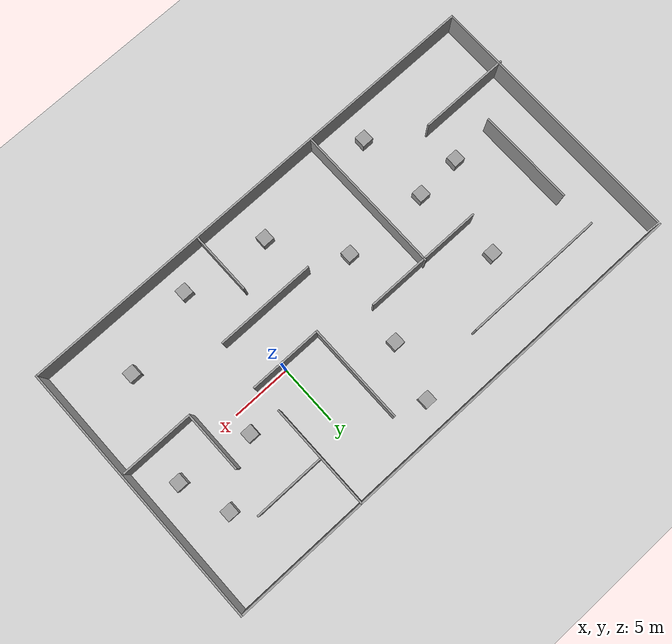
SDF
<sdf version="1.7">
 <world name="default">
  <light name="sun" type="directional">
   <pose>0 0 10 0 -0 0</pose>
   <diffuse>0.8 0.8 0.8 1</diffuse>
   <specular>0.2 0.2 0.2 1</specular>
   <attenuation>
    <range>1000</range>
    <constant>0.9</constant>
    <linear>0.01</linear>
    <quadratic>0.001</quadratic>
   </attenuation>
   <direction>-0.5 0.1 -0.9</direction>
   <spot><inner_angle>0</inner_angle><outer_angle>0</outer_angle><falloff>0</falloff></spot>
  </light>
  <model name="ground_plane">
   <static>1</static>
   <link name="link">
    <collision name="collision">
     <geometry><plane><normal>0 0 1</normal><size>100 100</size></plane></geometry>
     <surface><friction><ode><mu>100</mu><mu2>50</mu2></ode></friction></surface>
    </collision>
    <visual name="visual">
     <cast_shadows>0</cast_shadows>
     <geometry><plane><normal>0 0 1</normal><size>100 100</size></plane></geometry>
     <material>
      <script><uri>file://media/materials/scripts/gazebo.material</uri><name>Gazebo/Grey</name></script>
     </material>
    </visual>
   </link>
  </model>
  <gravity>0 0 -9.8</gravity>
  <magnetic_field>6e-06 2.3e-05 -4.2e-05</magnetic_field>
  <atmosphere type="adiabatic"/>
  <physics type="ode">
   <max_step_size>0.001</max_step_size>
   <real_time_factor>1</real_time_factor>
   <real_time_update_rate>1000</real_time_update_rate>
  </physics>
  <scene><ambient>0.4 0.4 0.4 1</ambient><background>0.7 0.7 0.7 1</background><shadows>1</shadows></scene>
  <audio><device>default</device></audio>
  <spherical_coordinates>
   <surface_model>EARTH_WGS84</surface_model>
   <latitude_deg>0</latitude_deg>
   <longitude_deg>0</longitude_deg>
   <elevation>0</elevation>
   <heading_deg>0</heading_deg>
  </spherical_coordinates>
  <model name="maze1">
   <pose>-7.20829 -0.34997 0 0 -0 0</pose>
   <link name="Wall_1">
    <collision name="Wall_1_Collision">
     <geometry><box><size>22.5 0.15 2.5</size></box></geometry>
     <pose>0 0 1.25 0 -0 0</pose>
    </collision>
    <visual name="Wall_1_Visual">
     <pose>0 0 1.25 0 -0 0</pose>
     <geometry><box><size>22.5 0.15 2.5</size></box></geometry>
     <material>
      <script><uri>file://media/materials/scripts/gazebo.material</uri><name>Gazebo/Grey</name></script>
      <ambient>1 1 1 1</ambient>
     </material>
     <meta><layer>0</layer></meta>
    </visual>
    <pose>-20.7077 -0.125 0 0 -0 -1.5708</pose>
   </link>
   <link name="Wall_11">
    <collision name="Wall_11_Collision">
     <geometry><box><size>7.75 0.15 2.5</size></box></geometry>
     <pose>0 0 1.25 0 -0 0</pose>
    </collision>
    <visual name="Wall_11_Visual">
     <pose>0 0 1.25 0 -0 0</pose>
     <geometry><box><size>7.75 0.15 2.5</size></box></geometry>
     <material>
      <script><uri>file://media/materials/scripts/gazebo.material</uri><name>Gazebo/Grey</name></script>
      <ambient>1 1 1 1</ambient>
     </material>
     <meta><layer>0</layer></meta>
    </visual>
    <pose>-17.0923 -6.05475 0 0 -0 0</pose>
   </link>
   <link name="Wall_13">
    <collision name="Wall_13_Collision">
     <geometry><box><size>10.25 0.15 2.5</size></box></geometry>
     <pose>0 0 1.25 0 -0 0</pose>
    </collision>
    <visual name="Wall_13_Visual">
     <pose>0 0 1.25 0 -0 0</pose>
     <geometry><box><size>10.25 0.15 2.5</size></box></geometry>
     <material>
      <script><uri>file://media/materials/scripts/gazebo.material</uri><name>Gazebo/Grey</name></script>
      <ambient>1 1 1 1</ambient>
     </material>
     <meta><layer>0</layer></meta>
    </visual>
    <pose>-5.81325 1.3286 0 0 -0 0</pose>
   </link>
   <link name="Wall_15">
    <collision name="Wall_15_Collision">
     <geometry><box><size>12.75 0.15 2.5</size></box></geometry>
     <pose>0 0 1.25 0 -0 0</pose>
    </collision>
    <visual name="Wall_15_Visual">
     <pose>0 0 1.25 0 -0 0</pose>
     <geometry><box><size>12.75 0.15 2.5</size></box></geometry>
     <material>
      <script><uri>file://media/materials/scripts/gazebo.material</uri><name>Gazebo/Grey</name></script>
      <ambient>1 1 1 1</ambient>
     </material>
     <meta><layer>0</layer></meta>
    </visual>
    <pose>-5.87949 -4.84835 0 0 -0 -1.5708</pose>
   </link>
   <link name="Wall_17">
    <collision name="Wall_17_Collision">
     <geometry><box><size>8.5 0.15 2.5</size></box></geometry>
     <pose>0 0 1.25 0 -0 0</pose>
    </collision>
    <visual name="Wall_17_Visual">
     <pose>0 0 1.25 0 -0 0</pose>
     <geometry><box><size>8.5 0.15 2.5</size></box></geometry>
     <material>
      <script><uri>file://media/materials/scripts/gazebo.material</uri><name>Gazebo/Grey</name></script>
      <ambient>1 1 1 1</ambient>
     </material>
     <meta><layer>0</layer></meta>
    </visual>
    <pose>3.65733 4.16777 0 0 -0 -1.5708</pose>
   </link>
   <link name="Wall_18">
    <collision name="Wall_18_Collision">
     <geometry><box><size>6.25 0.15 2.5</size></box></geometry>
     <pose>0 0 1.25 0 -0 0</pose>
    </collision>
    <visual name="Wall_18_Visual">
     <pose>0 0 1.25 0 -0 0</pose>
     <geometry><box><size>6.25 0.15 2.5</size></box></geometry>
     <material>
      <script><uri>file://media/materials/scripts/gazebo.material</uri><name>Gazebo/Grey</name></script>
      <ambient>1 1 1 1</ambient>
     </material>
     <meta><layer>0</layer></meta>
    </visual>
    <pose>6.70733 -0.007226 0 0 -0 0</pose>
   </link>
   <link name="Wall_2">
    <collision name="Wall_2_Collision">
     <geometry><box><size>41.75 0.15 2.5</size></box></geometry>
     <pose>0 0 1.25 0 -0 0</pose>
    </collision>
    <visual name="Wall_2_Visual">
     <pose>0 0 1.25 0 -0 0</pose>
     <geometry><box><size>41.75 0.15 2.5</size></box></geometry>
     <material>
      <script><uri>file://media/materials/scripts/gazebo.material</uri><name>Gazebo/Grey</name></script>
      <ambient>1 1 1 1</ambient>
     </material>
     <meta><layer>0</layer></meta>
    </visual>
    <pose>0.092291 -11.3 0 0 -0 0</pose>
   </link>
   <link name="Wall_20">
    <collision name="Wall_20_Collision">
     <geometry><box><size>8.5 0.15 2.5</size></box></geometry>
     <pose>0 0 1.25 0 -0 0</pose>
    </collision>
    <visual name="Wall_20_Visual">
     <pose>0 0 1.25 0 -0 0</pose>
     <geometry><box><size>8.5 0.15 2.5</size></box></geometry>
     <material>
      <script><uri>file://media/materials/scripts/gazebo.material</uri><name>Gazebo/Grey</name></script>
      <ambient>1 1 1 1</ambient>
     </material>
     <meta><layer>0</layer></meta>
    </visual>
    <pose>5.1251 -4.02433 0 0 -0 0</pose>
   </link>
   <link name="Wall_22">
    <collision name="Wall_22_Collision">
     <geometry><box><size>5.25 0.15 2.5</size></box></geometry>
     <pose>0 0 1.25 0 -0 0</pose>
    </collision>
    <visual name="Wall_22_Visual">
     <pose>0 0 1.25 0 -0 0</pose>
     <geometry><box><size>5.25 0.15 2.5</size></box></geometry>
     <material>
      <script><uri>file://media/materials/scripts/gazebo.material</uri><name>Gazebo/Grey</name></script>
      <ambient>1 1 1 1</ambient>
     </material>
     <meta><layer>0</layer></meta>
    </visual>
    <pose>5.50317 -8.60475 0 0 -0 -1.5708</pose>
   </link>
   <link name="Wall_24">
    <collision name="Wall_24_Collision">
     <geometry><box><size>9 0.15 2.5</size></box></geometry>
     <pose>0 0 1.25 0 -0 0</pose>
    </collision>
    <visual name="Wall_24_Visual">
     <pose>0 0 1.25 0 -0 0</pose>
     <geometry><box><size>9 0.15 2.5</size></box></geometry>
     <material>
      <script><uri>file://media/materials/scripts/gazebo.material</uri><name>Gazebo/Grey</name></script>
      <ambient>1 1 1 1</ambient>
     </material>
     <meta><layer>0</layer></meta>
    </visual>
    <pose>9.56401 6.87111 0 0 -0 -1.5708</pose>
   </link>
   <link name="Wall_26">
    <collision name="Wall_26_Collision">
     <geometry><box><size>6 0.15 2.5</size></box></geometry>
     <pose>0 0 1.25 0 -0 0</pose>
    </collision>
    <visual name="Wall_26_Visual">
     <pose>0 0 1.25 0 -0 0</pose>
     <geometry><box><size>6 0.15 2.5</size></box></geometry>
     <material>
      <script><uri>file://media/materials/scripts/gazebo.material</uri><name>Gazebo/Grey</name></script>
      <ambient>1 1 1 1</ambient>
     </material>
     <meta><layer>0</layer></meta>
    </visual>
    <pose>12.6121 6.98916 0 0 -0 0</pose>
   </link>
   <link name="Wall_28">
    <collision name="Wall_28_Collision">
     <geometry><box><size>5.25 0.15 2.5</size></box></geometry>
     <pose>0 0 1.25 0 -0 0</pose>
    </collision>
    <visual name="Wall_28_Visual">
     <pose>0 0 1.25 0 -0 0</pose>
     <geometry><box><size>5.25 0.15 2.5</size></box></geometry>
     <material>
      <script><uri>file://media/materials/scripts/gazebo.material</uri><name>Gazebo/Grey</name></script>
      <ambient>1 1 1 1</ambient>
     </material>
     <meta><layer>0</layer></meta>
    </visual>
    <pose>14.5478 0.870543 0 0 -0 -1.5708</pose>
   </link>
   <link name="Wall_29">
    <collision name="Wall_29_Collision">
     <geometry><box><size>6.25 0.15 2.5</size></box></geometry>
     <pose>0 0 1.25 0 -0 0</pose>
    </collision>
    <visual name="Wall_29_Visual">
     <pose>0 0 1.25 0 -0 0</pose>
     <geometry><box><size>6.25 0.15 2.5</size></box></geometry>
     <material>
      <script><uri>file://media/materials/scripts/gazebo.material</uri><name>Gazebo/Grey</name></script>
      <ambient>1 1 1 1</ambient>
     </material>
     <meta><layer>0</layer></meta>
    </visual>
    <pose>17.5978 -1.67946 0 0 -0 0</pose>
   </link>
   <link name="Wall_3">
    <collision name="Wall_3_Collision">
     <geometry><box><size>22.75 0.15 2.5</size></box></geometry>
     <pose>0 0 1.25 0 -0 0</pose>
    </collision>
    <visual name="Wall_3_Visual">
     <pose>0 0 1.25 0 -0 0</pose>
     <geometry><box><size>22.75 0.15 2.5</size></box></geometry>
     <material>
      <script><uri>file://media/materials/scripts/gazebo.material</uri><name>Gazebo/Grey</name></script>
      <ambient>1 1 1 1</ambient>
     </material>
     <meta><layer>0</layer></meta>
    </visual>
    <pose>20.8923 0 0 0 -0 1.5708</pose>
   </link>
   <link name="Wall_4">
    <collision name="Wall_4_Collision">
     <geometry><box><size>41.75 0.15 2.5</size></box></geometry>
     <pose>0 0 1.25 0 -0 0</pose>
    </collision>
    <visual name="Wall_4_Visual">
     <pose>0 0 1.25 0 -0 0</pose>
     <geometry><box><size>41.75 0.15 2.5</size></box></geometry>
     <material>
      <script><uri>file://media/materials/scripts/gazebo.material</uri><name>Gazebo/Grey</name></script>
      <ambient>1 1 1 1</ambient>
     </material>
     <meta><layer>0</layer></meta>
    </visual>
    <pose>0.092291 11.3 0 0 -0 3.14159</pose>
   </link>
   <link name="Wall_7">
    <collision name="Wall_7_Collision">
     <geometry><box><size>12 0.15 2.5</size></box></geometry>
     <pose>0 0 1.25 0 -0 0</pose>
    </collision>
    <visual name="Wall_7_Visual">
     <pose>0 0 1.25 0 -0 0</pose>
     <geometry><box><size>12 0.15 2.5</size></box></geometry>
     <material>
      <script><uri>file://media/materials/scripts/gazebo.material</uri><name>Gazebo/Grey</name></script>
      <ambient>1 1 1 1</ambient>
     </material>
     <meta><layer>0</layer></meta>
    </visual>
    <pose>-11.0295 7.78902 0 0 -0 0</pose>
   </link>
   <link name="Wall_9">
    <collision name="Wall_9_Collision">
     <geometry><box><size>8.25 0.15 2.5</size></box></geometry>
     <pose>0 0 1.25 0 -0 0</pose>
    </collision>
    <visual name="Wall_9_Visual">
     <pose>0 0 1.25 0 -0 0</pose>
     <geometry><box><size>8.25 0.15 2.5</size></box></geometry>
     <material>
      <script><uri>file://media/materials/scripts/gazebo.material</uri><name>Gazebo/Grey</name></script>
      <ambient>1 1 1 1</ambient>
     </material>
     <meta><layer>0</layer></meta>
    </visual>
    <pose>-16.9545 0.785685 0 0 -0 -1.5708</pose>
   </link>
   <static>1</static>
  </model>
  <model name="unit_box">
   <pose>-17.5738 3.99182 0.499995 -1e-05 0 0</pose>
   <link name="link">
    <inertial>
     <mass>1</mass>
     <inertia>
      <ixx>0.166667</ixx>
      <ixy>0</ixy>
      <ixz>0</ixz>
      <iyy>0.166667</iyy>
      <iyz>0</iyz>
      <izz>0.166667</izz>
     </inertia>
    </inertial>
    <collision name="collision"><geometry><box><size>1 1 1</size></box></geometry></collision>
    <visual name="visual">
     <geometry><box><size>1 1 1</size></box></geometry>
     <material>
      <script><name>Gazebo/Grey</name><uri>file://media/materials/scripts/gazebo.material</uri></script>
     </material>
    </visual>
   </link>
  </model>
  <model name="unit_box_0">
   <pose>-16.7427 -3.08058 0.499995 0 1e-05 0</pose>
   <link name="link">
    <inertial>
     <mass>1</mass>
     <inertia>
      <ixx>0.166667</ixx>
      <ixy>0</ixy>
      <ixz>0</ixz>
      <iyy>0.166667</iyy>
      <iyz>0</iyz>
      <izz>0.166667</izz>
     </inertia>
    </inertial>
    <collision name="collision"><geometry><box><size>1 1 1</size></box></geometry></collision>
    <visual name="visual">
     <geometry><box><size>1 1 1</size></box></geometry>
     <material>
      <script><name>Gazebo/Grey</name><uri>file://media/materials/scripts/gazebo.material</uri></script>
     </material>
    </visual>
   </link>
  </model>
  <model name="unit_box_1">
   <pose>-7.46743 3.9887 0.499995 -1e-05 0 0</pose>
   <link name="link">
    <inertial>
     <mass>1</mass>
     <inertia>
      <ixx>0.166667</ixx>
      <ixy>0</ixy>
      <ixz>0</ixz>
      <iyy>0.166667</iyy>
      <iyz>0</iyz>
      <izz>0.166667</izz>
     </inertia>
    </inertial>
    <collision name="collision"><geometry><box><size>1 1 1</size></box></geometry></collision>
    <visual name="visual">
     <geometry><box><size>1 1 1</size></box></geometry>
     <material>
      <script><name>Gazebo/Grey</name><uri>file://media/materials/scripts/gazebo.material</uri></script>
     </material>
    </visual>
   </link>
  </model>
  <model name="unit_box_2">
   <pose>-5.53481 -8.5729 0.499995 0 1e-05 0</pose>
   <link name="link">
    <inertial>
     <mass>1</mass>
     <inertia>
      <ixx>0.166667</ixx>
      <ixy>0</ixy>
      <ixz>0</ixz>
      <iyy>0.166667</iyy>
      <iyz>0</iyz>
      <izz>0.166667</izz>
     </inertia>
    </inertial>
    <collision name="collision"><geometry><box><size>1 1 1</size></box></geometry></collision>
    <visual name="visual">
     <geometry><box><size>1 1 1</size></box></geometry>
     <material>
      <script><name>Gazebo/Grey</name><uri>file://media/materials/scripts/gazebo.material</uri></script>
     </material>
    </visual>
   </link>
  </model>
  <model name="unit_box_3">
   <pose>-6.27114 8.72434 0.499995 0 1e-05 0</pose>
   <link name="link">
    <inertial>
     <mass>1</mass>
     <inertia>
      <ixx>0.166667</ixx>
      <ixy>0</ixy>
      <ixz>0</ixz>
      <iyy>0.166667</iyy>
      <iyz>0</iyz>
      <izz>0.166667</izz>
     </inertia>
    </inertial>
    <collision name="collision"><geometry><box><size>1 1 1</size></box></geometry></collision>
    <visual name="visual">
     <geometry><box><size>1 1 1</size></box></geometry>
     <material>
      <script><name>Gazebo/Grey</name><uri>file://media/materials/scripts/gazebo.material</uri></script>
     </material>
    </visual>
   </link>
  </model>
  <model name="unit_box_5">
   <pose>8.63564 -7.47614 0.499995 0 1e-05 0</pose>
   <link name="link">
    <inertial>
     <mass>1</mass>
     <inertia>
      <ixx>0.166667</ixx>
      <ixy>0</ixy>
      <ixz>0</ixz>
      <iyy>0.166667</iyy>
      <iyz>0</iyz>
      <izz>0.166667</izz>
     </inertia>
    </inertial>
    <collision name="collision"><geometry><box><size>1 1 1</size></box></geometry></collision>
    <visual name="visual">
     <geometry><box><size>1 1 1</size></box></geometry>
     <material>
      <script><name>Gazebo/Grey</name><uri>file://media/materials/scripts/gazebo.material</uri></script>
     </material>
    </visual>
   </link>
  </model>
  <model name="unit_box_6">
   <pose>-16.4983 -9.33144 0.499995 -1e-05 0 0</pose>
   <link name="link">
    <inertial>
     <mass>1</mass>
     <inertia>
      <ixx>0.166667</ixx>
      <ixy>0</ixy>
      <ixz>0</ixz>
      <iyy>0.166667</iyy>
      <iyz>0</iyz>
      <izz>0.166667</izz>
     </inertia>
    </inertial>
    <collision name="collision"><geometry><box><size>1 1 1</size></box></geometry></collision>
    <visual name="visual">
     <geometry><box><size>1 1 1</size></box></geometry>
     <material>
      <script><name>Gazebo/Grey</name><uri>file://media/materials/scripts/gazebo.material</uri></script>
     </material>
    </visual>
   </link>
  </model>
  <model name="unit_box_7">
   <pose>9.86746 4.99138 0.499995 0 1e-05 0</pose>
   <link name="link">
    <inertial>
     <mass>1</mass>
     <inertia>
      <ixx>0.166667</ixx>
      <ixy>0</ixy>
      <ixz>0</ixz>
      <iyy>0.166667</iyy>
      <iyz>0</iyz>
      <izz>0.166667</izz>
     </inertia>
    </inertial>
    <collision name="collision"><geometry><box><size>1 1 1</size></box></geometry></collision>
    <visual name="visual">
     <geometry><box><size>1 1 1</size></box></geometry>
     <material>
      <script><name>Gazebo/Grey</name><uri>file://media/materials/scripts/gazebo.material</uri></script>
     </material>
    </visual>
   </link>
  </model>
  <model name="unit_box_8">
   <pose>5.06174 1.77188 0.499995 -1e-05 0 0</pose>
   <link name="link">
    <inertial>
     <mass>1</mass>
     <inertia>
      <ixx>0.166667</ixx>
      <ixy>0</ixy>
      <ixz>0</ixz>
      <iyy>0.166667</iyy>
      <iyz>0</iyz>
      <izz>0.166667</izz>
     </inertia>
    </inertial>
    <collision name="collision"><geometry><box><size>1 1 1</size></box></geometry></collision>
    <visual name="visual">
     <geometry><box><size>1 1 1</size></box></geometry>
     <material>
      <script><name>Gazebo/Grey</name><uri>file://media/materials/scripts/gazebo.material</uri></script>
     </material>
    </visual>
   </link>
  </model>
  <model name="unit_box_9">
   <pose>11.2291 0.91924 0.499995 0 1e-05 0</pose>
   <link name="link">
    <inertial>
     <mass>1</mass>
     <inertia>
      <ixx>0.166667</ixx>
      <ixy>0</ixy>
      <ixz>0</ixz>
      <iyy>0.166667</iyy>
      <iyz>0</iyz>
      <izz>0.166667</izz>
     </inertia>
    </inertial>
    <collision name="collision"><geometry><box><size>1 1 1</size></box></geometry></collision>
    <visual name="visual">
     <geometry><box><size>1 1 1</size></box></geometry>
     <material>
      <script><name>Gazebo/Grey</name><uri>file://media/materials/scripts/gazebo.material</uri></script>
     </material>
    </visual>
   </link>
  </model>
  <model name="unit_box_10">
   <pose>-20.6421 -3.34291 0.499995 -1e-05 0 0</pose>
   <link name="link">
    <inertial>
     <mass>1</mass>
     <inertia>
      <ixx>0.166667</ixx>
      <ixy>0</ixy>
      <ixz>0</ixz>
      <iyy>0.166667</iyy>
      <iyz>0</iyz>
      <izz>0.166667</izz>
     </inertia>
    </inertial>
    <collision name="collision"><geometry><box><size>1 1 1</size></box></geometry></collision>
    <visual name="visual">
     <geometry><box><size>1 1 1</size></box></geometry>
     <material>
      <script><name>Gazebo/Grey</name><uri>file://media/materials/scripts/gazebo.material</uri></script>
     </material>
    </visual>
   </link>
  </model>
  <model name="unit_box_11">
   <pose>-9.49559 -3.28782 0.499995 0 1e-05 0</pose>
   <link name="link">
    <inertial>
     <mass>1</mass>
     <inertia>
      <ixx>0.166667</ixx>
      <ixy>0</ixy>
      <ixz>0</ixz>
      <iyy>0.166667</iyy>
      <iyz>0</iyz>
      <izz>0.166667</izz>
     </inertia>
    </inertial>
    <collision name="collision"><geometry><box><size>1 1 1</size></box></geometry></collision>
    <visual name="visual">
     <geometry><box><size>1 1 1</size></box></geometry>
     <material>
      <script><name>Gazebo/Grey</name><uri>file://media/materials/scripts/gazebo.material</uri></script>
     </material>
    </visual>
   </link>
  </model>
  <model name="unit_box_4">
   <pose>1.72015 -9.56802 0.5 0 -0 0</pose>
   <link name="link">
    <inertial>
     <mass>1</mass>
     <inertia>
      <ixx>0.166667</ixx>
      <ixy>0</ixy>
      <ixz>0</ixz>
      <iyy>0.166667</iyy>
      <iyz>0</iyz>
      <izz>0.166667</izz>
     </inertia>
    </inertial>
    <collision name="collision"><geometry><box><size>1 1 1</size></box></geometry></collision>
    <visual name="visual">
     <geometry><box><size>1 1 1</size></box></geometry>
     <material>
      <script><name>Gazebo/Grey</name><uri>file://media/materials/scripts/gazebo.material</uri></script>
     </material>
    </visual>
   </link>
  </model>
 </world>
</sdf>
